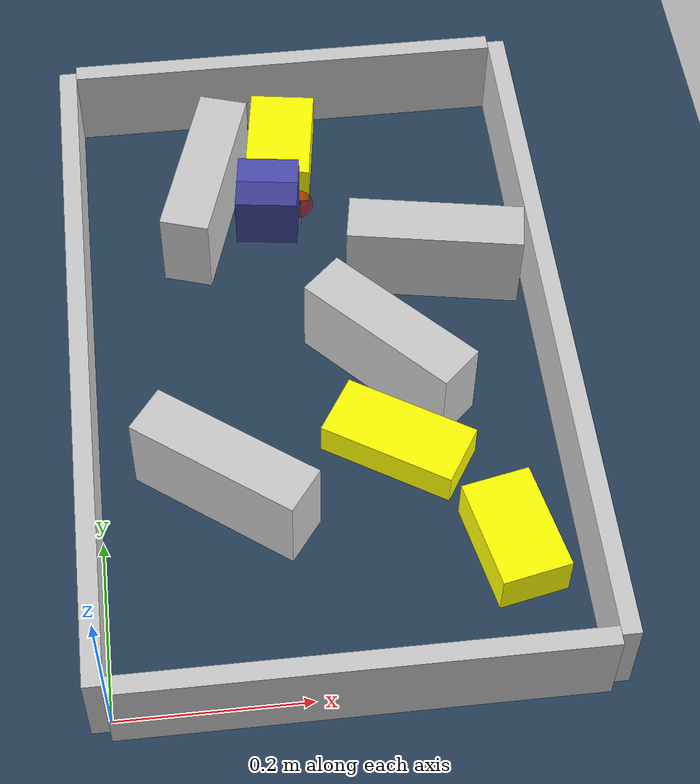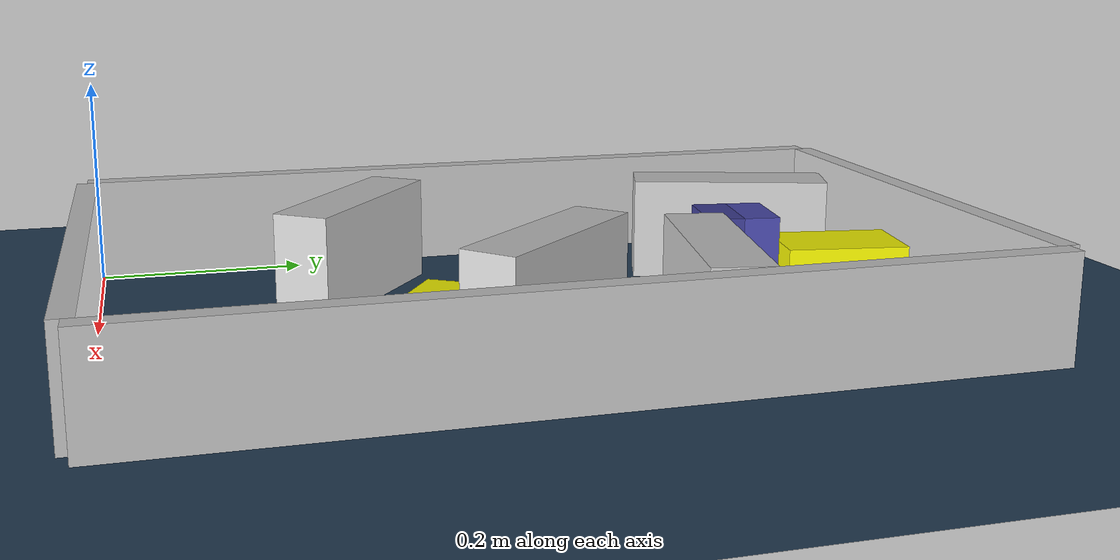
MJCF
<?xml version='1.0' encoding='utf-8'?>
<mujoco model="real_buildable">
  <compiler angle="degree" />
  <option timestep="0.002" integrator="implicitfast" iterations="100" cone="elliptic" />
  <default>
    <geom density="1" />
  </default>
  <asset>
    <texture builtin="gradient" height="3072" rgb1="0.3 0.5 0.7" rgb2="0 0 0" type="skybox" width="512" />
    <texture builtin="checker" height="300" mark="edge" markrgb="0.8 0.8 0.8" name="groundplane" rgb1="0.2 0.3 0.4" rgb2="0.1 0.2 0.3" type="2d" width="300" />
    <material name="groundplane" reflectance="0.2" texrepeat="5 5" texture="groundplane" texuniform="true" />
  </asset>
  <worldbody>
    <light dir="0 0 -1" directional="true" pos="0 0 1.5" />
    <geom name="floor" type="plane" condim="4" friction="0.5 0.005 0.001" material="groundplane" size="0 0 0.05" />
    <body name="walls">
      <geom name="wall_boundary_left" type="box" condim="4" friction="1.0 0.005 0.0001" rgba="0.8 0.8 0.8 1" pos="-0.010000 0.387500 0.050000" euler="0 0 0.000000" size="0.010000 0.397500 0.050000" />
      <geom name="wall_boundary_right" type="box" condim="4" friction="1.0 0.005 0.0001" rgba="0.8 0.8 0.8 1" pos="0.500000 0.387500 0.050000" euler="0 0 0.000000" size="0.010000 0.397500 0.050000" />
      <geom name="wall_boundary_bottom" type="box" condim="4" friction="1.0 0.005 0.0001" rgba="0.8 0.8 0.8 1" pos="0.245000 -0.010000 0.050000" euler="0 0 0.000000" size="0.245000 0.010000 0.050000" />
      <geom name="wall_boundary_top" type="box" condim="4" friction="1.0 0.005 0.0001" rgba="0.8 0.8 0.8 1" pos="0.245000 0.785000 0.050000" euler="0 0 0.000000" size="0.245000 0.010000 0.050000" />
      <geom name="wall_inner_1" type="box" condim="4" friction="1.0 0.005 0.0001" rgba="0.8 0.8 0.8 1" pos="0.320920 0.384478 0.050000" euler="0 0 133.290776" size="0.097500 0.027500 0.050000" />
      <geom name="wall_inner_2" type="box" condim="4" friction="1.0 0.005 0.0001" rgba="0.8 0.8 0.8 1" pos="0.132130 0.239609 0.050000" euler="0 0 143.206466" size="0.097500 0.027500 0.050000" />
      <geom name="wall_inner_3" type="box" condim="4" friction="1.0 0.005 0.0001" rgba="0.8 0.8 0.8 1" pos="0.389000 0.514000 0.050000" euler="0 0 169.900000" size="0.097500 0.027500 0.050000" />
      <geom name="wall_inner_4" type="box" condim="4" friction="1.0 0.005 0.0001" rgba="0.8 0.8 0.8 1" pos="0.140000 0.631000 0.050000" euler="0 0 72.500000" size="0.097500 0.027500 0.050000" />
    </body>
    <body name="car" pos="0.20955703022219674 0.60914332918248826 0.01" quat="0.75302909438602428 0 0 0.65798722100673368">
      <freejoint name="car_freejoint" />
      <inertial pos="0 0 0.0375" mass="0.35" diaginertia="0.000266 0.000266 0.000286" />
      <geom name="front_chassis_collision" type="box" pos="0.0175 0 0.0375" size="0.0175 0.035 0.0325" rgba="0.3 0.3 0.7 1" />
      <geom name="rear_chassis_collision" type="box" pos="-0.0175 0 0.0375" size="0.0175 0.035 0.0325" rgba="0.25 0.25 0.6 1" />
      <geom name="front_marker" type="box" pos="0.034 0 0.0505" size="0.002 0.015 0.01" rgba="1 0.2 0.2 1" contype="0" conaffinity="0" />
      <body name="rear_support_body" pos="-0.03 0 0.0025">
        <joint name="rear_caster_joint" type="ball" damping="0.0001" />
        <inertial pos="0 0 0" mass="0.025" diaginertia="0.000001 0.000001 0.000001" />
        <geom name="rear_support" type="sphere" pos="0 0 0" size="0.0025" friction="0 0 0" rgba="0.7 0.1 0.1 1" />
      </body>
      <body name="front_support_body" pos="0.03 0 0.0025">
        <joint name="front_caster_joint" type="ball" damping="0.0001" />
        <inertial pos="0 0 0" mass="0.025" diaginertia="0.000001 0.000001 0.000001" />
        <geom name="front_support" type="sphere" pos="0 0 0" size="0.0025" friction="0 0 0" rgba="0.1 0.7 0.1 1" />
      </body>
      <body name="left_wheel" pos="0 0.0375 0.015">
        <inertial pos="0 0 0" mass="0.05" diaginertia="0.000003 0.000006 0.000003" />
        <joint name="left_wheel_joint" type="hinge" axis="0 1 0" damping="0.01" armature="0.0001" />
        <geom name="left_wheel_collision" type="cylinder" size="0.015 0.0005" euler="90 0 0" rgba="0.1 0.1 0.1 1" />
      </body>
      <body name="right_wheel" pos="0 -0.0375 0.015">
        <inertial pos="0 0 0" mass="0.05" diaginertia="0.000003 0.000006 0.000003" />
        <joint name="right_wheel_joint" type="hinge" axis="0 1 0" damping="0.01" armature="0.0001" />
        <geom name="right_wheel_collision" type="cylinder" size="0.015 0.0005" euler="90 0 0" rgba="0.1 0.1 0.1 1" />
      </body>
    </body>
    <body name="obstacle_0_movable">
      <geom name="obstacle_0_movable" condim="4" pos="0.31906848736837717 0.28375557702052007 0.02" friction="1 0.005 0.0001" rgba="1 1 0 1" size="0.035000 0.075000 0.020000" type="box" mass="0.1" quat="0.8743242706251283 0 0 0.48534221925960391" />
      <joint type="free" />
    </body>
    <body name="obstacle_1_movable">
      <geom name="obstacle_1_movable" condim="4" pos="0.23295925842762502 0.71005812475679608 0.025000000000000001" friction="1 0.005 0.0001" rgba="1 1 0 1" size="0.037500 0.060000 0.025000" type="box" mass="0.1" quat="0.99713857104580705 0 0 -0.075595437248063765" />
      <joint type="free" />
    </body>
    <body name="obstacle_2_movable">
      <geom name="obstacle_2_movable" condim="4" pos="0.42081599999999875 0.14925799999999964 0.025000000000000001" friction="1 0.005 0.0001" rgba="1 1 0 1" size="0.037500 0.060000 0.025000" type="box" mass="0.1" quat="0.99465153157042296 0 0 0.10328761176739358" />
      <joint type="free" />
    </body>
    <site name="goal" type="sphere" pos="0.245000 0.640000 0.0" size="0.02" rgba="1 0 0 0.5" />
  </worldbody>
  <actuator>
    <velocity name="left_wheel_drive" joint="left_wheel_joint" ctrlrange="-25 25" kv="0.75" forcerange="-0.5 0.5" />
    <velocity name="right_wheel_drive" joint="right_wheel_joint" ctrlrange="-25 25" kv="0.75" forcerange="-0.5 0.5" />
  </actuator>
</mujoco>
